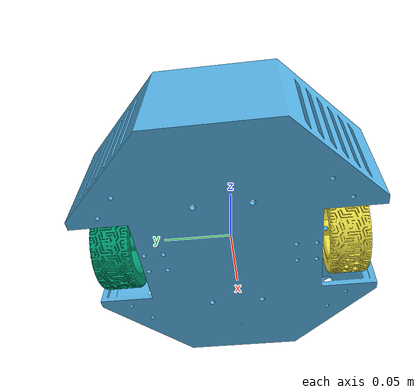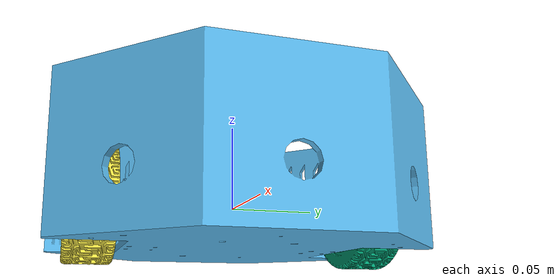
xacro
<?xml version="1.0"?>
<robot xmlns:xacro="http://www.ros.org/wiki/xacro" name="robot" >

    <!-- Robot description -->
    <xacro:include filename="$(find minimal_driver)/urdf/robot_core.xacro"/>
    <!-- Ros2 controller -->
    <xacro:include filename="$(find minimal_driver)/urdf/diffbot.ros2_control.xacro"/>

</robot>

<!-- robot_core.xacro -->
<robot xmlns:xacro="http://www.ros.org/wiki/xacro">

    <link name="base_link"/>
    <!-- Chassis joint  -->
    <joint name="chassis_joint" type="fixed">
        <parent link="base_link"/>
        <child link="chassis"/>
        <origin xyz="0.0 0.0 0.0"/>
    </joint>

    <!-- Chassis Link -->
    <link name="chassis">
        <visual>
            <origin
            xyz="0.0 0.0 0.0"
            rpy="0.0 0.0 0.0"/>
            <geometry>
                <mesh
                  filename="package://minimal_driver/meshes/base_link.STL" />
            </geometry>
        </visual>
        <collision>
            <origin
              xyz="0.0 0.0 0.0"
              rpy="0.0 0.0 0.0" />
            <geometry>
              <mesh
                filename="package://minimal_driver/meshes/base_link.STL" />
            </geometry>
        </collision>
    </link>

    <!-- Left Wheel Link -->
     <joint name="left_wheel_joint" type="continuous">
        <parent link="base_link"/>
        <child link="left_wheel_link"/>
        <origin
            xyz="0.0 0.08 0.0"
            rpy="-${pi/2} 0 0" />
        <axis xyz="0.0 0.0 1.0"/>
     </joint>

     <link name="left_wheel_link">
        <visual>
        <origin
            xyz="0 0 0"
            rpy="0 0 0" />
        <geometry>
            <mesh
            filename="package://minimal_driver/meshes/left_wheel_link.STL" />
        </geometry>
        </visual>
        <collision>
            <origin
              xyz="0 0 0"
              rpy="0 0 0" />
            <geometry>
              <mesh
                filename="package://minimal_driver/meshes/left_wheel_link.STL" />
            </geometry>
        </collision>
     </link>

     <!-- Right Wheel Link -->
     <joint name="right_wheel_joint" type="continuous">
        <parent link="base_link"/>
        <child link="right_wheel_link"/>
        <origin
            xyz="0.0 -0.08 0.0"
            rpy="${pi/2} 0 0" />
        <axis xyz="0.0 0.0 -1.0"/>
     </joint>

     <link name="right_wheel_link">
        <visual>
        <origin
            xyz="0 0 0"
            rpy="0 0 0" />
        <geometry>
            <mesh
            filename="package://minimal_driver/meshes/right_wheel_link.STL" />
        </geometry>
        </visual>
        <collision>
            <origin
              xyz="0 0 0"
              rpy="0 0 0" />
            <geometry>
              <mesh
                filename="package://minimal_driver/meshes/right_wheel_link.STL" />
            </geometry>
        </collision>
     </link>
</robot>
